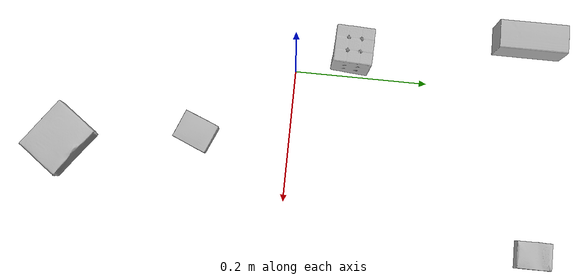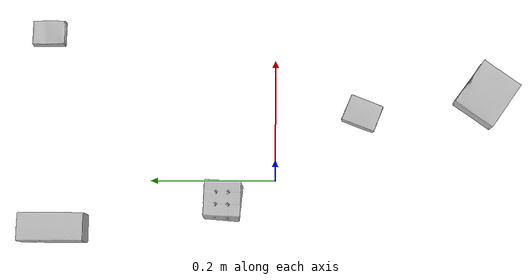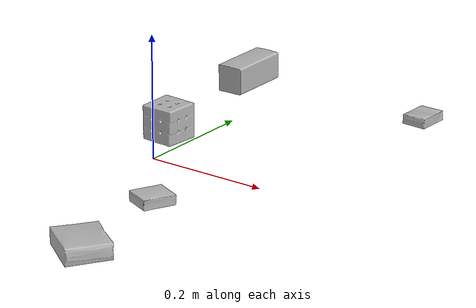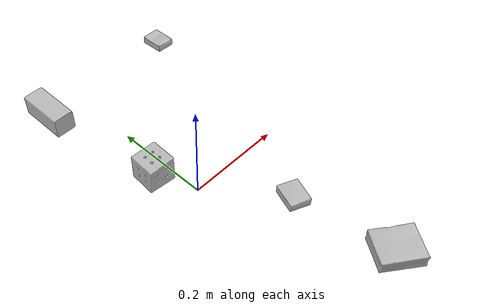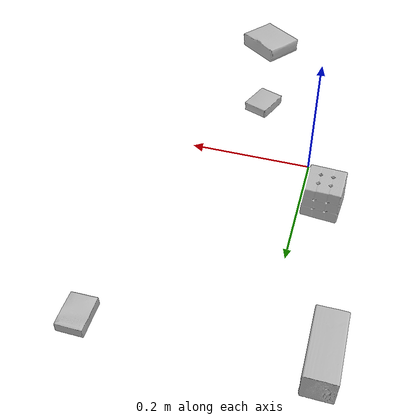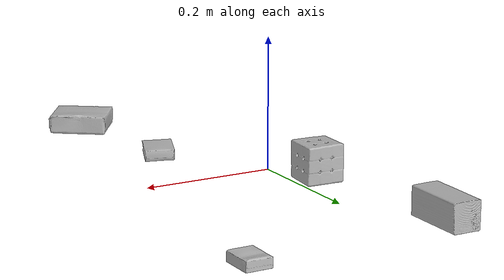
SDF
<sdf version="1.4">
  <world name="default">
    <light name="light1" type="point">
      <pose>0 0 1 0 0 0</pose>
      <diffuse>3 3 3 1</diffuse>
      <specular>3 3 3 1</specular>
    </light>
    <light name="light2" type="point">
      <pose>0 0.5 2 0 0 0</pose>
      <diffuse>1 1 1 1</diffuse>
      <specular>1 1 1 1</specular>
    </light>
    <light name="light3" type="point">
      <pose>0 0.5 2 0 0 0</pose>
      <diffuse>3 3 3 1</diffuse>
      <specular>3 3 3 1</specular>
    </light>
    <scene>
      <ambient>0.7 0.7 0.7</ambient>
    </scene>
    <model name="box1">
      <link name="link_box1">
        <collision name="default">
          <geometry>
            <mesh>
              <uri>model://rubiks_cube/collision_meshes/collision.obj</uri>
              <scale>1.0 1.0 1.0</scale>
            </mesh>
          </geometry>
          <surface>
            <friction>
              <ode>
                <mu>0.5</mu>
                <mu2>0.5</mu2>
              </ode>
            </friction>
          <contact>
        <ode>
            <max_vel>0</max_vel>
            <min_depth>0.0001</min_depth>
            <kp>1e8</kp>
        </ode>
    </contact></surface>
        </collision>
        <visual name="default">
          <geometry>
            <mesh>
              <uri>model://rubiks_cube/visual_meshes/visual.dae</uri>
              <scale>1.0 1.0 1.0</scale>
            </mesh>
          </geometry>
        </visual>
        <inertial>
          <mass>0.16542086005210876</mass>
          <pose>2.6721041649580002e-05 5.256967051536776e-05 -7.264316536748083e-06 -0.054673137900176624 -0.09813866632394339 -0.03445580911338559</pose>
          <inertia>
            <ixx>9.140613e-05</ixx>
            <iyy>9.097988e-05</iyy>
            <izz>9.216359e-05</izz>
            <ixy>0</ixy>
            <ixz>0</ixz>
            <iyz>0</iyz>
          </inertia>
        </inertial>
      </link>
      <pose>-0.03471330553293228 0.08247679471969604 0.028678972274065018 -2.7267080698030643e-06 -7.930256753841179e-07 -0.04961122733099921</pose>
    </model>
    <model name="box2">
      <link name="link_box2">
        <collision name="default">
          <geometry>
            <mesh>
              <uri>model://cracker_box/collision_meshes/collision.obj</uri>
              <scale>0.25 0.25 0.25</scale>
            </mesh>
          </geometry>
          <surface>
            <friction>
              <ode>
                <mu>0.5</mu>
                <mu2>0.5</mu2>
              </ode>
            </friction>
          <contact>
        <ode>
            <max_vel>0</max_vel>
            <min_depth>0.0001</min_depth>
            <kp>1e8</kp>
        </ode>
    </contact></surface>
        </collision>
        <visual name="default">
          <geometry>
            <mesh>
              <uri>model://cracker_box/visual_meshes/visual.dae</uri>
              <scale>0.25 0.25 0.25</scale>
            </mesh>
          </geometry>
        </visual>
        <inertial>
          <mass>0.04381135478615761</mass>
          <pose>0.00023660462466068566 6.358561222441494e-05 -0.0004257383698131889 -0.00031620747829542317 -0.011106489600678707 0.002546794302661479</pose>
          <inertia>
            <ixx>6.9647826e-06</ixx>
            <iyy>1.1500225e-05</iyy>
            <izz>1.6411877e-05</izz>
            <ixy>0</ixy>
            <ixz>0</ixz>
            <iyz>0</iyz>
          </inertia>
        </inertial>
      </link>
      <pose>0.2435978800058365 0.37320229411125183 0.009096031077206135 -0.014050060326746393 -0.00501642819601401 -1.5705800487196653</pose>
    </model>
    <model name="box3">
      <link name="link_box3">
        <collision name="default">
          <geometry>
            <mesh>
              <uri>model://gelatin_box/collision_meshes/collision.obj</uri>
              <scale>1.0 1.0 1.0</scale>
            </mesh>
          </geometry>
          <surface>
            <friction>
              <ode>
                <mu>0.5</mu>
                <mu2>0.5</mu2>
              </ode>
            </friction>
          <contact>
        <ode>
            <max_vel>0</max_vel>
            <min_depth>0.0001</min_depth>
            <kp>1e8</kp>
        </ode>
    </contact></surface>
        </collision>
        <visual name="default">
          <geometry>
            <mesh>
              <uri>model://gelatin_box/visual_meshes/visual.dae</uri>
              <scale>1.0 1.0 1.0</scale>
            </mesh>
          </geometry>
        </visual>
        <inertial>
          <mass>0.23367169499397278</mass>
          <pose>0.0004319618456065655 0.00011156871914863586 -0.0003640321083366871 -0.0010503719733775277 -0.004755817758083372 0.016440561333906818</pose>
          <inertia>
            <ixx>0.00016495313</ixx>
            <iyy>0.00011782518</iyy>
            <izz>0.00025109548</izz>
            <ixy>0</ixy>
            <ixz>0</ixz>
            <iyz>0</iyz>
          </inertia>
        </inertial>
      </link>
      <pose>0.14063063263893127 -0.3427067697048187 0.015168317593634129 0.005597458959752413 -0.007304538059413762 0.9323169308037201</pose>
    </model>
    <model name="box4">
      <link name="link_box4">
        <collision name="default">
          <geometry>
            <mesh>
              <uri>model://wood_block/collision_meshes/collision.obj</uri>
              <scale>0.5 0.5 0.5</scale>
            </mesh>
          </geometry>
          <surface>
            <friction>
              <ode>
                <mu>0.5</mu>
                <mu2>0.5</mu2>
              </ode>
            </friction>
          <contact>
        <ode>
            <max_vel>0</max_vel>
            <min_depth>0.0001</min_depth>
            <kp>1e8</kp>
        </ode>
    </contact></surface>
        </collision>
        <visual name="default">
          <geometry>
            <mesh>
              <uri>model://wood_block/visual_meshes/visual.dae</uri>
              <scale>0.5 0.5 0.5</scale>
            </mesh>
          </geometry>
        </visual>
        <inertial>
          <mass>0.20833587646484375</mass>
          <pose>-2.9066577553749084e-06 -0.000285404734313488 0.00013204291462898254 -0.05220975529367638 -0.0051926946165042134 -0.0068613779519224715</pose>
          <inertia>
            <ixx>6.9696216e-05</ixx>
            <iyy>0.0002201704</iyy>
            <izz>0.00021934687</izz>
            <ixy>0</ixy>
            <ixz>0</ixz>
            <iyz>0</iyz>
          </inertia>
        </inertial>
      </link>
      <pose>-0.07788519561290741 0.348300039768219 0.0226292721927166 -0.005208618862786625 0.0057187145885205445 1.5742451212016784</pose>
    </model>
    <model name="box5">
      <link name="link_box5">
        <collision name="default">
          <geometry>
            <mesh>
              <uri>model://pudding_box/collision_meshes/collision.obj</uri>
              <scale>0.5 0.5 0.5</scale>
            </mesh>
          </geometry>
          <surface>
            <friction>
              <ode>
                <mu>0.5</mu>
                <mu2>0.5</mu2>
              </ode>
            </friction>
          <contact>
        <ode>
            <max_vel>0</max_vel>
            <min_depth>0.0001</min_depth>
            <kp>1e8</kp>
        </ode>
    </contact></surface>
        </collision>
        <visual name="default">
          <geometry>
            <mesh>
              <uri>model://pudding_box/visual_meshes/visual.dae</uri>
              <scale>0.5 0.5 0.5</scale>
            </mesh>
          </geometry>
        </visual>
        <inertial>
          <mass>0.032720133662223816</mass>
          <pose>0.00024474109522998333 0.0004033942532259971 -0.0002594413817860186 0.005213102275410761 -0.0066037963999523224 0.020079827026921356</pose>
          <inertia>
            <ixx>9.2471055e-06</ixx>
            <iyy>6.221519e-06</iyy>
            <izz>1.3655769e-05</izz>
            <ixy>0</ixy>
            <ixz>0</ixz>
            <iyz>0</iyz>
          </inertia>
        </inertial>
      </link>
      <pose>0.10932902246713638 -0.1403152197599411 0.009862905368208885 0.022348409439313467 -0.011391823710842857 2.7504706188892913</pose>
    </model>
  <physics type="ode">
      <max_contacts>50</max_contacts>
      <ode>
        <solver>
          <type>quick</type>
          <iters>75</iters>
        </solver>
        <constraints>
          <contact_max_correcting_vel>0</contact_max_correcting_vel>
          <contact_surface_layer>0</contact_surface_layer>
        </constraints>
      </ode>
    </physics></world>
</sdf>
